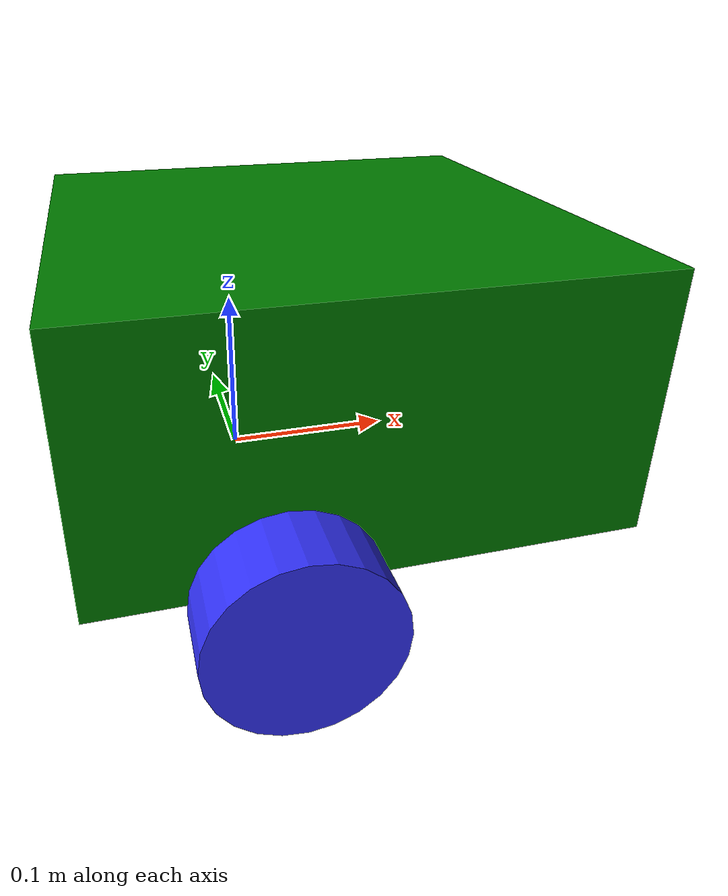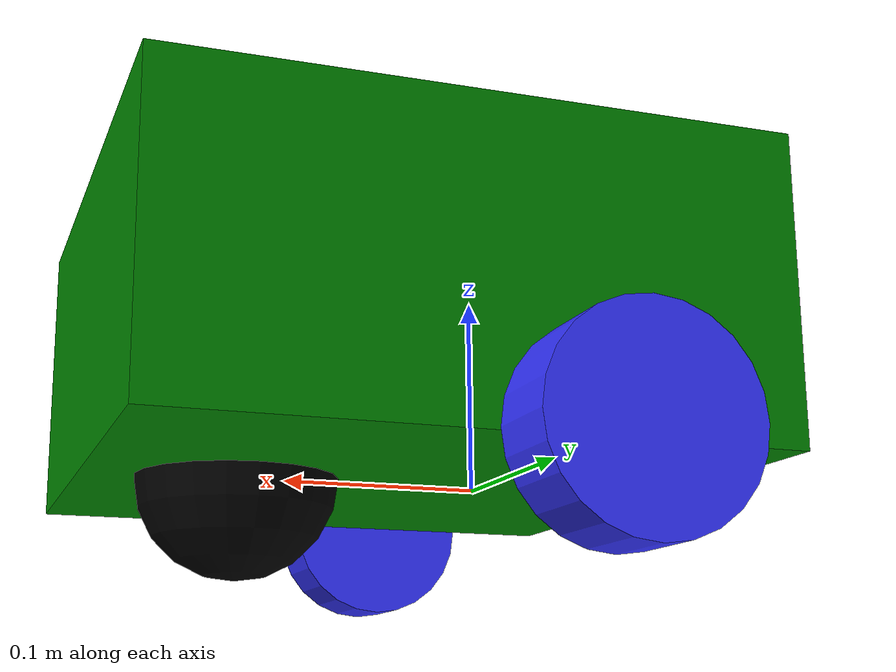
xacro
<?xml version="1.0"?>
<robot xmlns:xacro="http://www.ros.org/wiki/xacro"  name="robot">

    <xacro:include filename="inertial_macros.xacro" />

    <material name="green">
        <color rgba="0 0.5 0 1" />
    </material>

    <material name="orange">
        <color rgba="1 0.3 0.1 1" />
    </material>

    <material name="blue">
        <color rgba="0.2 0.2 1 1" />
    </material>

    <material name="black">
        <color rgba="0 0 0 1" />
    </material>

    <link name="base_link">
    </link>

    <link name="chassis">
        <visual>
            <geometry>
                <box size="0.3 0.3 0.15" />
            </geometry>
            <material name="green" />
            <origin xyz="0.15 0 0.075" />
        </visual>
        <collision>
            <geometry>
                <box size="0.3 0.3 0.15" />
            </geometry>
            <origin xyz="0.15 0 0.075" />
        </collision>
        <xacro:inertial_box mass="0.5" x="0.3" y="0.3" z="0.15">
            <origin xyz="0.15 0 0.175" rpy="0 0 0" />
        </xacro:inertial_box>
    </link>

    <joint name="chassis_joint" type="fixed">
        <parent link="base_link" />
        <child link="chassis" />
        <origin xyz="-0.1 0 0" />
    </joint>

    <link name="left_wheel">
        <visual>
            <geometry>
                <cylinder radius="0.05" length="0.04" />
            </geometry>
            <material name="blue" />
        </visual>
        <collision>
            <geometry>
                <cylinder radius="0.05" length="0.04" />
            </geometry>
        </collision>
        <xacro:inertial_cylinder mass="0.1" length="0.04" radius="0.05">
            <origin xyz="0 0 0" rpy="0 0 0" />
        </xacro:inertial_cylinder>
    </link>

    <joint name="left_wheel_joint" type="continuous">
        <parent link="base_link" />
        <child link="left_wheel" />
        <origin xyz="0 0.175 0" rpy="-${pi/2} 0 0" />
        <axis xyz="0 0 1" />
    </joint>

    <link name="right_wheel">
        <visual>
            <geometry>
                <cylinder radius="0.05" length="0.04" />
            </geometry>
            <material name="blue" />
        </visual>
        <collision>
            <geometry>
                <cylinder radius="0.05" length="0.04" />
            </geometry>
        </collision>
        <xacro:inertial_cylinder mass="0.1" length="0.04" radius="0.05">
            <origin xyz="0 0 0" rpy="0 0 0" />
        </xacro:inertial_cylinder>
    </link>

    <joint name="right_wheel_joint" type="continuous">
        <parent link="base_link" />
        <child link="right_wheel" />
        <origin xyz="0 -0.175 0" rpy="${pi/2} 0 0" />
        <axis xyz="0 0 1" />
    </joint>

    <link name="castor_wheel">
        <visual>
            <geometry>
                <sphere radius="0.05" />
            </geometry>
            <material name="black" />
        </visual>
        <collision>
            <geometry>
                <sphere radius="0.05" />
            </geometry>
        </collision>
        <xacro:inertial_sphere mass="0.1" radius="0.05">
            <origin xyz="0 0 0" rpy="0 0 0" />
        </xacro:inertial_sphere>
    </link>

    <joint name="castor_wheel_joint" type="fixed">
        <parent link="base_link" />
        <child link="castor_wheel" />
        <origin xyz="0.124 0 0" />
    </joint>

</robot>
